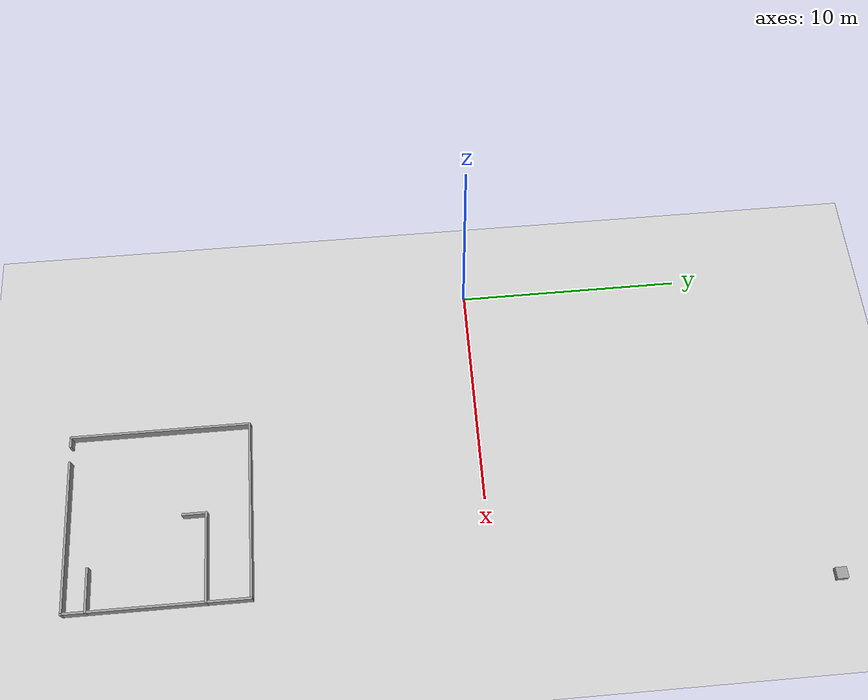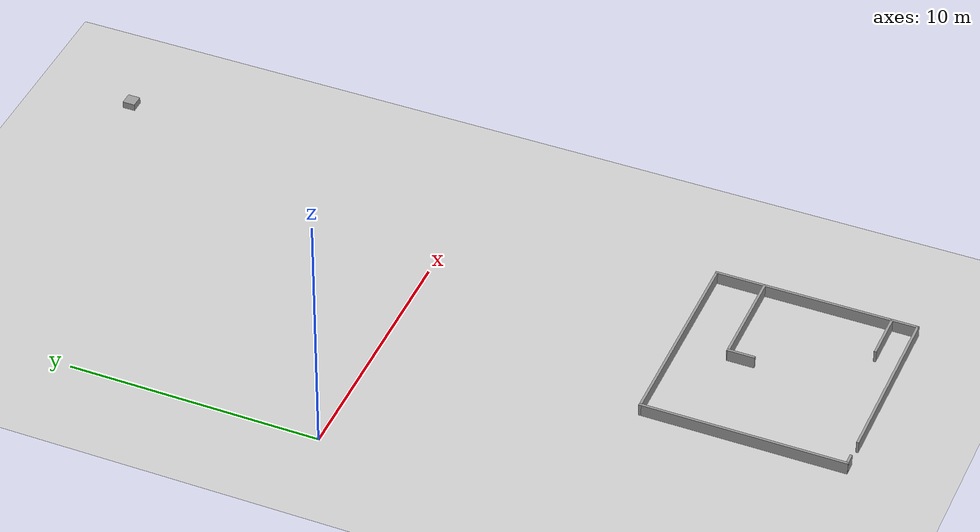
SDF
<sdf version="1.6">
 <world name="default">
  <model name="ground_plane">
   <static>1</static>
   <link name="link">
    <collision name="collision">
     <geometry><plane><normal>0 0 1</normal><size>40 40</size></plane></geometry>
     <surface>
      <contact><collide_bitmask>65535</collide_bitmask></contact>
      <friction><ode><mu>100</mu><mu2>50</mu2></ode></friction>
     </surface>
     <max_contacts>15</max_contacts>
    </collision>
    <visual name="visual">
     <cast_shadows>0</cast_shadows>
     <geometry><plane><normal>0 0 1</normal><size>40 40</size></plane></geometry>
     <material>
      <script><uri>file://media/materials/scripts/gazebo.material</uri><name>Gazebo/Grey</name></script>
     </material>
    </visual>
   </link>
  </model>
  <model name="shape6">
   <pose>9.7 -14.1 0 0 -0 0</pose>
   <link name="Wall_0">
    <collision name="Wall_0_Collision">
     <geometry><box><size>8 0.1 0.5</size></box></geometry>
     <pose>0 0 0.25 0 -0 0</pose>
    </collision>
    <visual name="Wall_0_Visual">
     <pose>0 0 0.25 0 -0 0</pose>
     <geometry><box><size>8 0.1 0.5</size></box></geometry>
     <material>
      <script><uri>file://media/materials/scripts/gazebo.material</uri><name>Gazebo/Grey</name></script>
      <ambient>1 1 1 1</ambient>
     </material>
     <meta><layer>0</layer></meta>
    </visual>
    <pose>-3.95 0 0 0 -0 -1.5708</pose>
   </link>
   <link name="Wall_1">
    <collision name="Wall_1_Collision">
     <geometry><box><size>0.5 0.1 0.5</size></box></geometry>
     <pose>0 0 0.25 0 -0 0</pose>
    </collision>
    <visual name="Wall_1_Visual">
     <pose>0 0 0.25 0 -0 0</pose>
     <geometry><box><size>0.5 0.1 0.5</size></box></geometry>
     <material>
      <script><uri>file://media/materials/scripts/gazebo.material</uri><name>Gazebo/Grey</name></script>
      <ambient>1 1 1 1</ambient>
     </material>
     <meta><layer>0</layer></meta>
    </visual>
    <pose>-3.75 -3.95 0 0 -0 0</pose>
   </link>
   <link name="Wall_10">
    <collision name="Wall_10_Collision">
     <geometry><box><size>1.95 0.1 0.5</size></box></geometry>
     <pose>0 0 0.25 0 -0 0</pose>
    </collision>
    <visual name="Wall_10_Visual">
     <pose>0 0 0.25 0 -0 0</pose>
     <geometry><box><size>1.95 0.1 0.5</size></box></geometry>
     <material>
      <script><uri>file://media/materials/scripts/gazebo.material</uri><name>Gazebo/Grey</name></script>
      <ambient>1 1 1 1</ambient>
     </material>
     <meta><layer>0</layer></meta>
    </visual>
    <pose>3.025 -2.95 0 0 -0 3.14159</pose>
   </link>
   <link name="Wall_12">
    <collision name="Wall_12_Collision">
     <geometry><box><size>1.1 0.1 0.5</size></box></geometry>
     <pose>0 0 0.25 0 -0 0</pose>
    </collision>
    <visual name="Wall_12_Visual">
     <pose>0 0 0.25 0 -0 0</pose>
     <geometry><box><size>1.1 0.1 0.5</size></box></geometry>
     <material>
      <script><uri>file://media/materials/scripts/gazebo.material</uri><name>Gazebo/Grey</name></script>
      <ambient>1 1 1 1</ambient>
     </material>
     <meta><layer>0</layer></meta>
    </visual>
    <pose>3.95 -3.45 0 0 -0 -1.5708</pose>
   </link>
   <link name="Wall_13">
    <collision name="Wall_13_Collision">
     <geometry><box><size>6.8 0.1 0.5</size></box></geometry>
     <pose>0 0 0.25 0 -0 0</pose>
    </collision>
    <visual name="Wall_13_Visual">
     <pose>0 0 0.25 0 -0 0</pose>
     <geometry><box><size>6.8 0.1 0.5</size></box></geometry>
     <material>
      <script><uri>file://media/materials/scripts/gazebo.material</uri><name>Gazebo/Grey</name></script>
      <ambient>1 1 1 1</ambient>
     </material>
     <meta><layer>0</layer></meta>
    </visual>
    <pose>0.6 -3.95 0 0 -0 3.14159</pose>
   </link>
   <link name="Wall_3">
    <collision name="Wall_3_Collision">
     <geometry><box><size>8 0.1 0.5</size></box></geometry>
     <pose>0 0 0.25 0 -0 0</pose>
    </collision>
    <visual name="Wall_3_Visual">
     <pose>0 0 0.25 0 -0 0</pose>
     <geometry><box><size>8 0.1 0.5</size></box></geometry>
     <material>
      <script><uri>file://media/materials/scripts/gazebo.material</uri><name>Gazebo/Grey</name></script>
      <ambient>1 1 1 1</ambient>
     </material>
     <meta><layer>0</layer></meta>
    </visual>
    <pose>-0 3.95 0 0 -0 0</pose>
   </link>
   <link name="Wall_4">
    <collision name="Wall_4_Collision">
     <geometry><box><size>2 0.1 0.5</size></box></geometry>
     <pose>0 0 0.25 0 -0 0</pose>
    </collision>
    <visual name="Wall_4_Visual">
     <pose>0 0 0.25 0 -0 0</pose>
     <geometry><box><size>2 0.1 0.5</size></box></geometry>
     <material>
      <script><uri>file://media/materials/scripts/gazebo.material</uri><name>Gazebo/Grey</name></script>
      <ambient>1 1 1 1</ambient>
     </material>
     <meta><layer>0</layer></meta>
    </visual>
    <pose>3.95 3 0 0 -0 -1.5708</pose>
   </link>
   <link name="Wall_5">
    <collision name="Wall_5_Collision">
     <geometry><box><size>5.1 0.1 0.5</size></box></geometry>
     <pose>0 0 0.25 0 -0 0</pose>
    </collision>
    <visual name="Wall_5_Visual">
     <pose>0 0 0.25 0 -0 0</pose>
     <geometry><box><size>5.1 0.1 0.5</size></box></geometry>
     <material>
      <script><uri>file://media/materials/scripts/gazebo.material</uri><name>Gazebo/Grey</name></script>
      <ambient>1 1 1 1</ambient>
     </material>
     <meta><layer>0</layer></meta>
    </visual>
    <pose>3.95 -0.45 0 0 -0 -1.5708</pose>
   </link>
   <link name="Wall_7">
    <collision name="Wall_7_Collision">
     <geometry><box><size>4 0.1 0.5</size></box></geometry>
     <pose>0 0 0.25 0 -0 0</pose>
    </collision>
    <visual name="Wall_7_Visual">
     <pose>0 0 0.25 0 -0 0</pose>
     <geometry><box><size>4 0.1 0.5</size></box></geometry>
     <material>
      <script><uri>file://media/materials/scripts/gazebo.material</uri><name>Gazebo/Grey</name></script>
      <ambient>1 1 1 1</ambient>
     </material>
     <meta><layer>0</layer></meta>
    </visual>
    <pose>2 2.05 0 0 -0 3.14159</pose>
   </link>
   <link name="Wall_8">
    <collision name="Wall_8_Collision">
     <geometry><box><size>1.1 0.1 0.5</size></box></geometry>
     <pose>0 0 0.25 0 -0 0</pose>
    </collision>
    <visual name="Wall_8_Visual">
     <pose>0 0 0.25 0 -0 0</pose>
     <geometry><box><size>1.1 0.1 0.5</size></box></geometry>
     <material>
      <script><uri>file://media/materials/scripts/gazebo.material</uri><name>Gazebo/Grey</name></script>
      <ambient>1 1 1 1</ambient>
     </material>
     <meta><layer>0</layer></meta>
    </visual>
    <pose>0.05 1.55 0 0 -0 -1.5708</pose>
   </link>
   <static>1</static>
  </model>
  <model name="box_d=50">
   <link name="link_2">
    <inertial>
     <mass>1</mass>
     <inertia>
      <ixx>0.166667</ixx>
      <ixy>0</ixy>
      <ixz>0</ixz>
      <iyy>0.166667</iyy>
      <iyz>0</iyz>
      <izz>0.166667</izz>
     </inertia>
    </inertial>
    <pose>14.65 14.75 0 0 -0 0</pose>
    <visual name="visual">
     <geometry><box><size>0.5 0.5 0.5</size></box></geometry>
     <material>
      <lighting>1</lighting>
      <script><uri>file://media/materials/scripts/gazebo.material</uri><name>Gazebo/Grey</name></script>
      <shader type="vertex"><normal_map>__default__</normal_map></shader>
      <ambient>0.3 0.3 0.3 1</ambient>
      <diffuse>0.7 0.7 0.7 1</diffuse>
      <specular>0.01 0.01 0.01 1</specular>
      <emissive>0 0 0 1</emissive>
     </material>
    </visual>
    <collision name="collision">
     <geometry><box><size>0.5 0.5 0.5</size></box></geometry>
     <surface>
      <friction>
       <ode><mu>1</mu><mu2>1</mu2><fdir1>0 0 0</fdir1><slip1>0</slip1><slip2>0</slip2></ode>
       <torsional>
        <coefficient>1</coefficient>
        <patch_radius>0</patch_radius>
        <surface_radius>0</surface_radius>
        <use_patch_radius>1</use_patch_radius>
        <ode><slip>0</slip></ode>
       </torsional>
      </friction>
      <bounce><restitution_coefficient>0</restitution_coefficient><threshold>1e+06</threshold></bounce>
      <contact>
       <collide_without_contact>0</collide_without_contact>
       <collide_without_contact_bitmask>1</collide_without_contact_bitmask>
       <collide_bitmask>1</collide_bitmask>
       <ode>
        <soft_cfm>0</soft_cfm>
        <soft_erp>0.2</soft_erp>
        <kp>1e+13</kp>
        <kd>1</kd>
        <max_vel>0.01</max_vel>
        <min_depth>0</min_depth>
       </ode>
       <bullet>
        <split_impulse>1</split_impulse>
        <split_impulse_penetration_threshold>-0.01</split_impulse_penetration_threshold>
        <soft_cfm>0</soft_cfm>
        <soft_erp>0.2</soft_erp>
        <kp>1e+13</kp>
        <kd>1</kd>
       </bullet>
      </contact>
     </surface>
    </collision>
   </link>
   <static>0</static>
  </model>
 </world>
</sdf>
